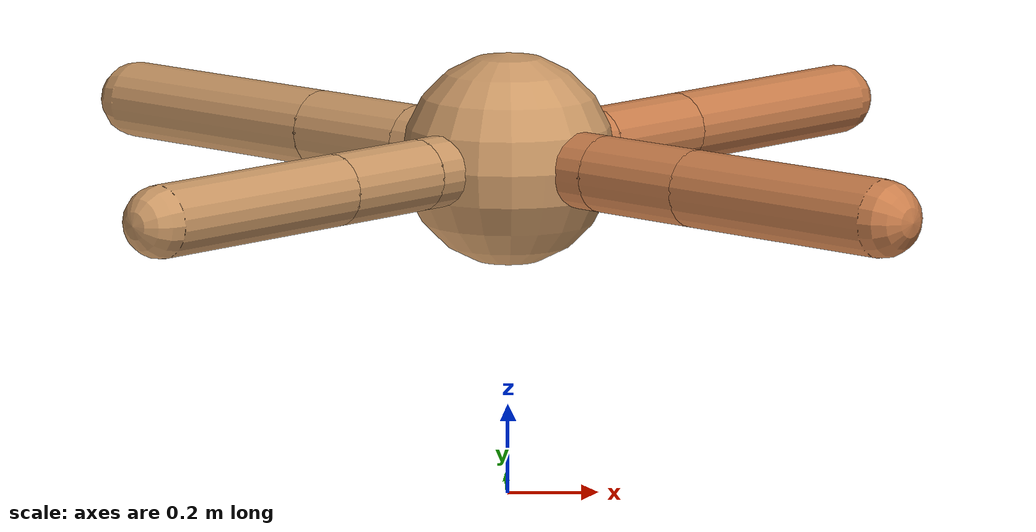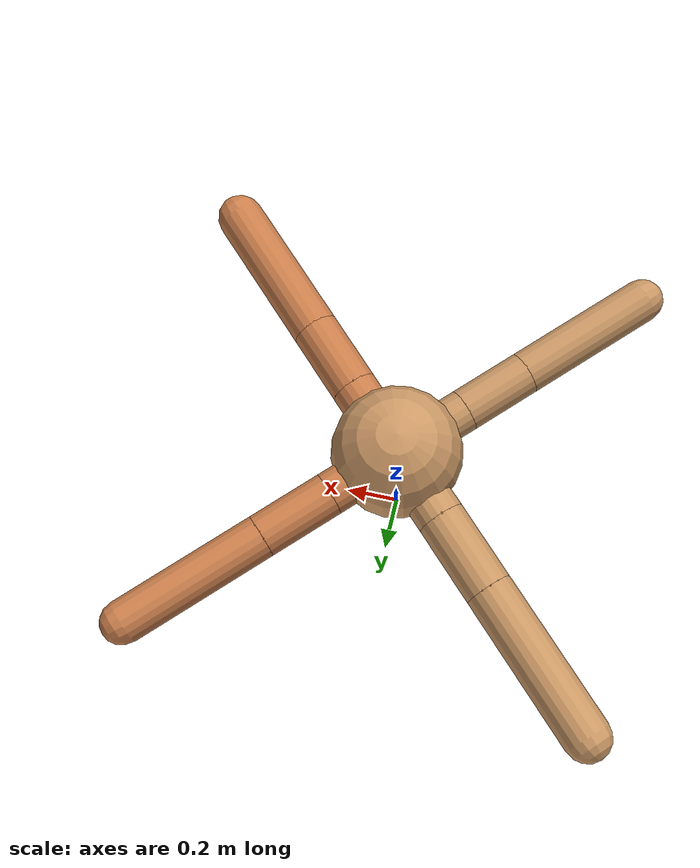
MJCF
<?xml version="1.0" ?>
<mujoco model="ant">

	<compiler angle="degree" coordinate="local" inertiafromgeom="true"/>

	<option integrator="RK4" timestep="0.01"/>

	<custom>

		<numeric data="0.0 0.0 0.55 1.0 0.0 0.0 0.0 0.0 1.0 0.0 -1.0 0.0 -1.0 0.0 1.0" name="init_qpos"/>

	</custom>

	<default>

		<joint armature="1" damping="1" limited="true"/>

		<geom conaffinity="0" condim="3" density="5.0" friction="1.5 0.1 0.1" margin="0.01" rgba="0.8 0.6 0.4 1"/>

	</default>

	<worldbody>

		<body name="torso" pos="0 0 0.75">

			<geom name="torso_geom" pos="0 0 0" size="0.2349019785432936" type="sphere"/>

			<!--joint armature="0" damping="0" limited="false" margin="0.01" name="root" pos="0 0 0" type="free"/-->

			<body name="front_left_leg" pos="0 0 0">

				<geom fromto="0 0 0 0.2 0.2 0" name="aux_1_geom" size="0.07894035787887435" type="capsule" rgba=".8 .5 .3 1"/>

				<body name="aux_1" pos="0.2 0.2 0">

					<joint axis="0 0 1" name="hip_1" pos="0.0 0.0 0.0" range="-40 40" type="hinge"/>

					<geom fromto="0 0 0 0.19543648727293322 0.19543648727293322 0" name="left_leg_geom" size="0.07894035787887435" type="capsule" rgba=".8 .5 .3 1"/>

					<body pos="0.19543648727293322 0.19543648727293322 0" name="front_left_foot">

						<joint axis="-1 1 0" name="ankle_1" pos="0.0 0.0 0.0" range="30 100" type="hinge"/>

						<geom fromto="0 0 0 0.39087297454586645 0.39087297454586645 0" name="left_ankle_geom" size="0.07894035787887435" type="capsule" rgba=".8 .5 .3 1"/>

					</body>

				</body>

			</body>

			<body name="front_right_leg" pos="0 0 0">

				<geom fromto="0 0 0 -0.2 0.2 0" name="aux_2_geom" size="0.08611005683803576" type="capsule"/>

				<body name="aux_2" pos="-0.2 0.2 0">

					<joint axis="0 0 1" name="hip_2" pos="0.0 0.0 0.0" range="-40 40" type="hinge"/>

					<geom fromto="0 0 0 -0.20979265183341045 0.20979265183341045 0" name="right_leg_geom" size="0.08611005683803576" type="capsule"/>

					<body pos="-0.20979265183341045 0.20979265183341045 0" name="front_right_foot">

						<joint axis="1 1 0" name="ankle_2" pos="0.0 0.0 0.0" range="-100 -30" type="hinge"/>

						<geom fromto="0 0 0 -0.4195853036668209 0.4195853036668209 0" name="right_ankle_geom" size="0.08611005683803576" type="capsule"/>

					</body>

				</body>

			</body>

			<body name="left_back_leg" pos="0 0 0">

				<geom fromto="0 0 0 -0.2 -0.2 0" name="aux_3_geom" size="0.07770917464130477" type="capsule"/>

				<body name="aux_3" pos="-0.2 -0.2 0">

					<joint axis="0 0 1" name="hip_3" pos="0.0 0.0 0.0" range="-40 40" type="hinge"/>

					<geom fromto="0 0 0 -0.18232599620996667 -0.18232599620996667 0" name="back_leg_geom" size="0.07770917464130477" type="capsule"/>

					<body pos="-0.18232599620996667 -0.18232599620996667 0" name="left_back_foot">

						<joint axis="-1 1 0" name="ankle_3" pos="0.0 0.0 0.0" range="-100 -30" type="hinge"/>

						<geom fromto="0 0 0 -0.36465199241993335 -0.36465199241993335 0" name="third_ankle_geom" size="0.07770917464130477" type="capsule"/>

					</body>

				</body>

			</body>

			<body name="right_back_leg" pos="0 0 0">

				<geom fromto="0 0 0 0.2 -0.2 0" name="aux_4_geom" size="0.08324538392477339" type="capsule" rgba=".8 .5 .3 1"/>

				<body name="aux_4" pos="0.2 -0.2 0">

					<joint axis="0 0 1" name="hip_4" pos="0.0 0.0 0.0" range="-40 40" type="hinge"/>

					<geom fromto="0 0 0 0.1846518887682133 -0.1846518887682133 0" name="rightback_leg_geom" size="0.08324538392477339" type="capsule" rgba=".8 .5 .3 1"/>

					<body pos="0.1846518887682133 -0.1846518887682133 0" name="right_back_foot">

						<joint axis="1 1 0" name="ankle_4" pos="0.0 0.0 0.0" range="30 100" type="hinge"/>

						<geom fromto="0 0 0 0.3693037775364266 -0.3693037775364266 0" name="fourth_ankle_geom" size="0.08324538392477339" type="capsule" rgba=".8 .5 .3 1"/>

					</body>

				</body>

			</body>

		</body>

	</worldbody>

	<actuator>

		<motor ctrllimited="true" ctrlrange="-1.0 1.0" joint="hip_4" gear="150"/>

		<motor ctrllimited="true" ctrlrange="-1.0 1.0" joint="ankle_4" gear="150"/>

		<motor ctrllimited="true" ctrlrange="-1.0 1.0" joint="hip_1" gear="150"/>

		<motor ctrllimited="true" ctrlrange="-1.0 1.0" joint="ankle_1" gear="150"/>

		<motor ctrllimited="true" ctrlrange="-1.0 1.0" joint="hip_2" gear="150"/>

		<motor ctrllimited="true" ctrlrange="-1.0 1.0" joint="ankle_2" gear="150"/>

		<motor ctrllimited="true" ctrlrange="-1.0 1.0" joint="hip_3" gear="150"/>

		<motor ctrllimited="true" ctrlrange="-1.0 1.0" joint="ankle_3" gear="150"/>

	</actuator>

</mujoco>
